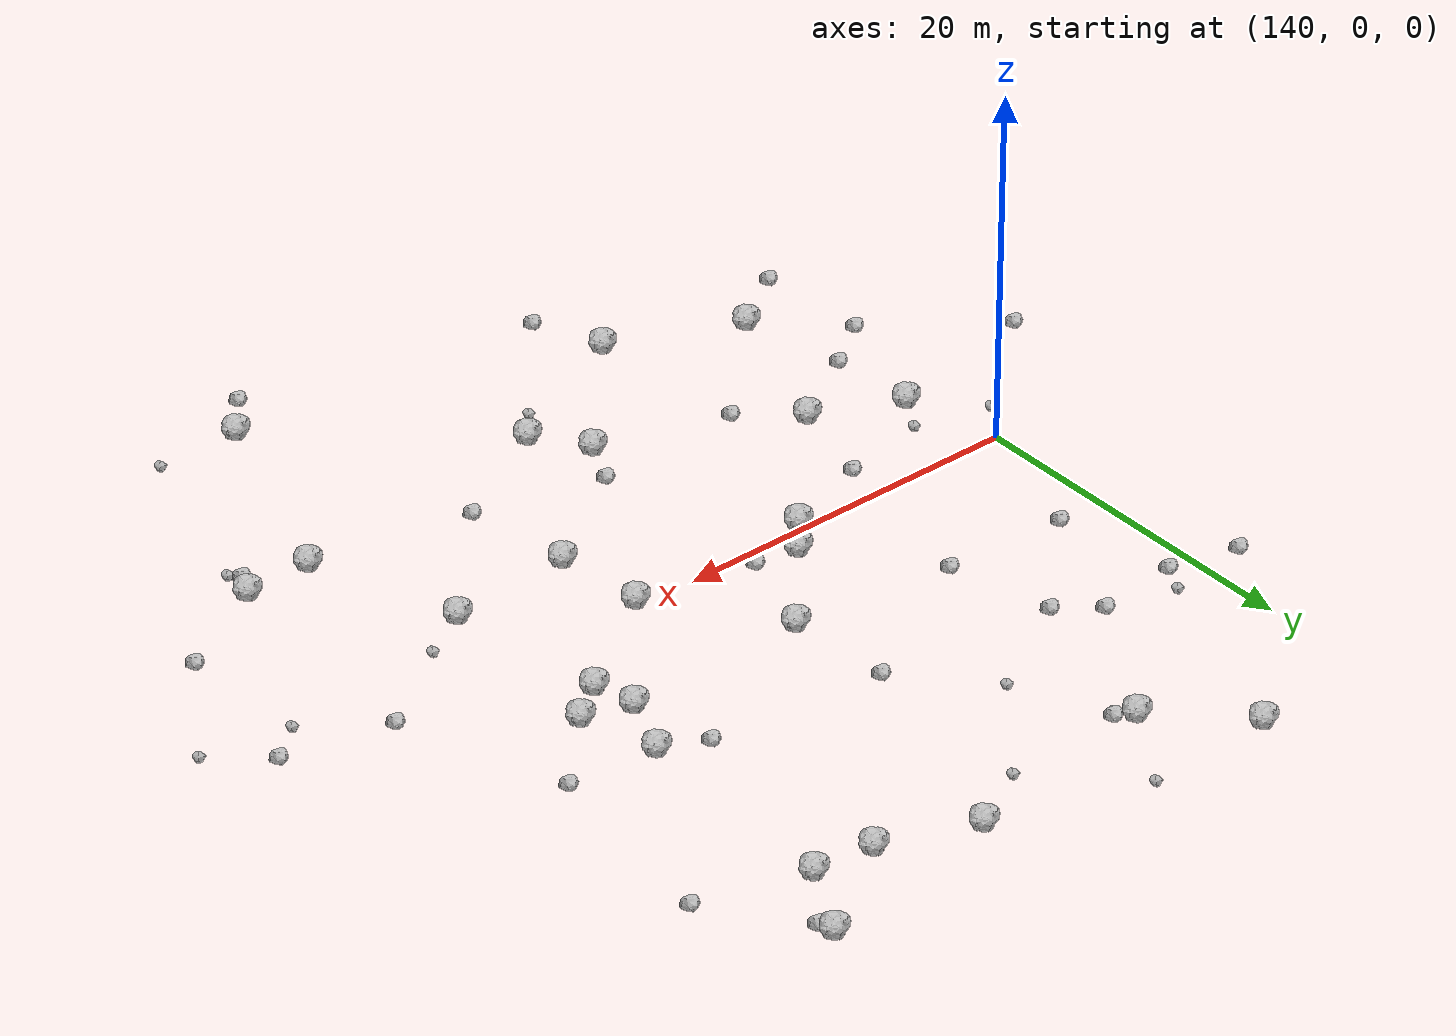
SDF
<sdf version="1.6">
 <world name="default">
  <include><uri>model://sun</uri></include>
  <model name="rock1_4_2">
   <include><uri>model://rock1</uri><pose>171.59865342830727 5.526660870948696 0.5 0 0 0</pose></include>
  </model>
  <model name="rock1_4_3">
   <include><uri>model://rock1</uri><pose>156.5007466972025 -12.146968999104217 0.5 0 0 0</pose></include>
  </model>
  <model name="rock1_4_4">
   <include><uri>model://rock1</uri><pose>141.5585814586077 -5.276927765922391 0.5 0 0 0</pose></include>
  </model>
  <model name="rock1_4_5">
   <include><uri>model://rock1</uri><pose>163.38045323854828 -0.3627374600994955 0.5 0 0 0</pose></include>
  </model>
  <model name="rock1_4_6">
   <include><uri>model://rock1</uri><pose>173.12350612982647 25.813937358719272 0.5 0 0 0</pose></include>
  </model>
  <model name="rock1_4_7">
   <include><uri>model://rock1</uri><pose>146.33424551376157 -7.418220865029383 0.5 0 0 0</pose></include>
  </model>
  <model name="rock1_4_8">
   <include><uri>model://rock1</uri><pose>170.83006939088511 -4.907875648390004 0.5 0 0 0</pose></include>
  </model>
  <model name="rock1_4_9">
   <include><uri>model://rock1</uri><pose>146.8745034158265 26.55736916545426 0.5 0 0 0</pose></include>
  </model>
  <model name="rock1_4_10">
   <include><uri>model://rock1</uri><pose>162.43342805625164 24.063269332551847 0.5 0 0 0</pose></include>
  </model>
  <model name="rock1_4_11">
   <include><uri>model://rock1</uri><pose>167.58722792705163 22.161141719016477 0.5 0 0 0</pose></include>
  </model>
  <model name="rock1_4_12">
   <include><uri>model://rock1</uri><pose>154.41441844175705 1.3299182489123211 0.5 0 0 0</pose></include>
  </model>
  <model name="rock1_4_13">
   <include><uri>model://rock1</uri><pose>163.91050709945907 -5.379789889073564 0.5 0 0 0</pose></include>
  </model>
  <model name="rock1_4_14">
   <include><uri>model://rock1</uri><pose>158.66849068645675 6.148709538285445 0.5 0 0 0</pose></include>
  </model>
  <model name="rock1_4_15">
   <include><uri>model://rock1</uri><pose>151.09531350446858 22.279228921996555 0.5 0 0 0</pose></include>
  </model>
  <model name="rock1_4_16">
   <include><uri>model://rock1</uri><pose>169.48298638552532 3.9470720282696306 0.5 0 0 0</pose></include>
  </model>
  <model name="rock1_4_17">
   <include><uri>model://rock1</uri><pose>169.42480640000113 -24.81838616217228 0.5 0 0 0</pose></include>
  </model>
  <model name="rock1_4_18">
   <include><uri>model://rock1</uri><pose>152.92119330496678 -0.40157191393753777 0.5 0 0 0</pose></include>
  </model>
  <model name="rock1_4_19">
   <include><uri>model://rock1</uri><pose>143.0516858696157 -16.117780162144193 0.5 0 0 0</pose></include>
  </model>
  <model name="rock1_4_20">
   <include><uri>model://rock1</uri><pose>170.94889097997273 21.82601054696361 0.5 0 0 0</pose></include>
  </model>
  <model name="rock1_4_21">
   <include><uri>model://rock1</uri><pose>158.40574806734602 -15.022007167844794 0.5 0 0 0</pose></include>
  </model>
  <model name="rock1_4_22">
   <include><uri>model://rock1</uri><pose>150.15905017349857 -19.166327517836972 0.5 0 0 0</pose></include>
  </model>
  <model name="rock1_4_23">
   <include><uri>model://rock1</uri><pose>168.9582274513744 6.3106514248855206 0.5 0 0 0</pose></include>
  </model>
  <model name="rock1_4_24">
   <include><uri>model://rock1</uri><pose>170.40140362367518 9.755317494775888 0.5 0 0 0</pose></include>
  </model>
  <model name="rock1_4_25">
   <include><uri>model://rock1</uri><pose>173.69589404569024 -13.143396031369171 0.5 0 0 0</pose></include>
  </model>
  <model name="rock1_4_26">
   <include><uri>model://rock1</uri><pose>177.4719998877136 -13.033007191498626 0.5 0 0 0</pose></include>
  </model>
  <model name="rock2_4_0">
   <include><uri>model://rock2</uri><pose>164.76413459906246 -11.382876229003934 0.3 0 0 0</pose></include>
  </model>
  <model name="rock2_4_1">
   <include><uri>model://rock2</uri><pose>142.8322459407662 7.802446996456396 0.3 0 0 0</pose></include>
  </model>
  <model name="rock2_4_2">
   <include><uri>model://rock2</uri><pose>157.67382725548407 -9.606664114320257 0.3 0 0 0</pose></include>
  </model>
  <model name="rock2_4_3">
   <include><uri>model://rock2</uri><pose>149.7229095295574 7.369010069753493 0.3 0 0 0</pose></include>
  </model>
  <model name="rock2_4_4">
   <include><uri>model://rock2</uri><pose>178.5120730104565 0.17670584168372017 0.3 0 0 0</pose></include>
  </model>
  <model name="rock2_4_5">
   <include><uri>model://rock2</uri><pose>182.92818703701784 -9.874104930328865 0.3 0 0 0</pose></include>
  </model>
  <model name="rock2_4_6">
   <include><uri>model://rock2</uri><pose>137.6961187228952 15.245863693520334 0.3 0 0 0</pose></include>
  </model>
  <model name="rock2_4_7">
   <include><uri>model://rock2</uri><pose>167.9122098284621 10.89262265704673 0.3 0 0 0</pose></include>
  </model>
  <model name="rock2_4_8">
   <include><uri>model://rock2</uri><pose>141.79921717332226 -10.18956812467145 0.3 0 0 0</pose></include>
  </model>
  <model name="rock2_4_9">
   <include><uri>model://rock2</uri><pose>167.542866059378 -27.100043729604252 0.3 0 0 0</pose></include>
  </model>
  <model name="rock2_4_10">
   <include><uri>model://rock2</uri><pose>132.3853663067844 -7.22271927028703 0.3 0 0 0</pose></include>
  </model>
  <model name="rock2_4_11">
   <include><uri>model://rock2</uri><pose>138.9596574545261 -12.202605723463016 0.3 0 0 0</pose></include>
  </model>
  <model name="rock2_4_12">
   <include><uri>model://rock2</uri><pose>151.9959396965604 21.681107421990596 0.3 0 0 0</pose></include>
  </model>
  <model name="rock2_4_13">
   <include><uri>model://rock2</uri><pose>184.4767594515076 -1.1058284896593946 0.3 0 0 0</pose></include>
  </model>
  <model name="rock2_4_14">
   <include><uri>model://rock2</uri><pose>176.8838001696833 20.099717855896984 0.3 0 0 0</pose></include>
  </model>
  <model name="rock2_4_15">
   <include><uri>model://rock2</uri><pose>173.35239803877417 24.977682239442217 0.3 0 0 0</pose></include>
  </model>
  <model name="rock2_4_16">
   <include><uri>model://rock2</uri><pose>148.34493022656758 13.148348000730522 0.3 0 0 0</pose></include>
  </model>
  <model name="rock2_4_17">
   <include><uri>model://rock2</uri><pose>175.31915932963955 9.320267425540997 0.3 0 0 0</pose></include>
  </model>
  <model name="rock2_4_18">
   <include><uri>model://rock2</uri><pose>139.4380375244291 -18.532803387254607 0.3 0 0 0</pose></include>
  </model>
  <model name="rock2_4_19">
   <include><uri>model://rock2</uri><pose>176.8459748857457 -14.263339209683803 0.3 0 0 0</pose></include>
  </model>
  <model name="rock2_4_20">
   <include><uri>model://rock2</uri><pose>141.55161400180026 14.318880018351848 0.3 0 0 0</pose></include>
  </model>
  <model name="rock2_4_21">
   <include><uri>model://rock2</uri><pose>158.2187227526694 12.003358675359081 0.3 0 0 0</pose></include>
  </model>
  <model name="rock2_4_22">
   <include><uri>model://rock2</uri><pose>151.55734713686007 -23.12076328333824 0.3 0 0 0</pose></include>
  </model>
  <model name="rock2_4_23">
   <include><uri>model://rock2</uri><pose>146.20935263531896 14.830001717790644 0.3 0 0 0</pose></include>
  </model>
  <model name="rock2_4_24">
   <include><uri>model://rock2</uri><pose>156.81600880697331 0.9960970259468418 0.3 0 0 0</pose></include>
  </model>
  <model name="rock2_4_25">
   <include><uri>model://rock2</uri><pose>149.2078428083235 -9.95655771736504 0.3 0 0 0</pose></include>
  </model>
  <model name="rock2_4_26">
   <include><uri>model://rock2</uri><pose>147.77045556469812 -2.1844721217862997 0.3 0 0 0</pose></include>
  </model>
  <model name="rock3_4_0">
   <include><uri>model://rock3</uri><pose>142.6952864860274 -3.295203161879936 0.2 0 0 0</pose></include>
  </model>
  <model name="rock3_4_1">
   <include><uri>model://rock3</uri><pose>156.92248906425164 -16.708920025916676 0.2 0 0 0</pose></include>
  </model>
  <model name="rock3_4_2">
   <include><uri>model://rock3</uri><pose>158.71885362910274 22.008106704018203 0.2 0 0 0</pose></include>
  </model>
  <model name="rock3_4_3">
   <include><uri>model://rock3</uri><pose>174.06119650764495 -24.82511717949638 0.2 0 0 0</pose></include>
  </model>
  <model name="rock3_4_4">
   <include><uri>model://rock3</uri><pose>182.40956629848932 -2.8126918465155804 0.2 0 0 0</pose></include>
  </model>
  <model name="rock3_4_5">
   <include><uri>model://rock3</uri><pose>187.256234954556 -3.6753581544214207 0.2 0 0 0</pose></include>
  </model>
  <model name="rock3_4_6">
   <include><uri>model://rock3</uri><pose>142.3057992438095 15.78082558494988 0.2 0 0 0</pose></include>
  </model>
  <model name="rock3_4_7">
   <include><uri>model://rock3</uri><pose>154.08766463698606 16.41839245277579 0.2 0 0 0</pose></include>
  </model>
  <model name="rock3_4_8">
   <include><uri>model://rock3</uri><pose>173.50371579812833 -3.3647241292721866 0.2 0 0 0</pose></include>
  </model>
  <model name="rock3_4_9">
   <include><uri>model://rock3</uri><pose>153.93747147963416 26.728226669557124 0.2 0 0 0</pose></include>
  </model>
  <model name="rock3_4_10">
   <include><uri>model://rock3</uri><pose>177.22353825951998 -14.92864577386747 0.2 0 0 0</pose></include>
  </model>
  <model name="rock3_4_11">
   <include><uri>model://rock3</uri><pose>151.71067358220316 21.364186737313027 0.2 0 0 0</pose></include>
  </model>
  <model name="rock3_4_12">
   <include><uri>model://rock3</uri><pose>138.4629519774693 -2.1912919263014388 0.2 0 0 0</pose></include>
  </model>
 </world>
</sdf>
